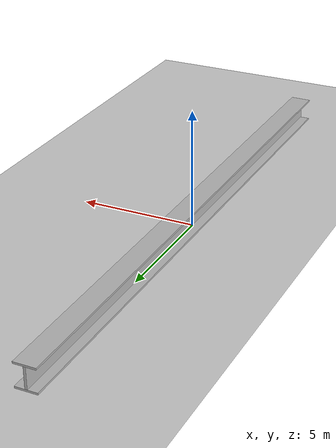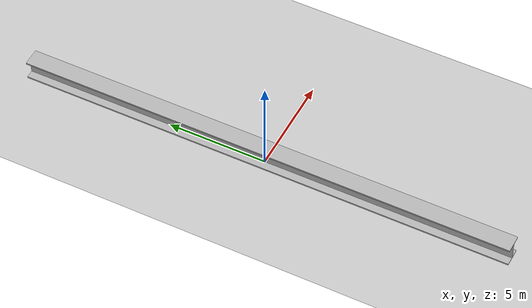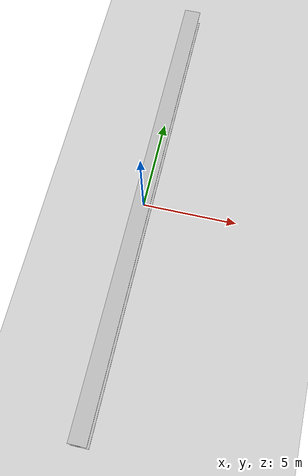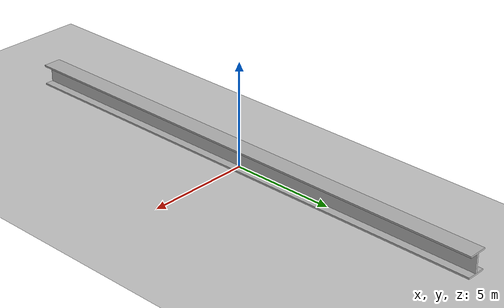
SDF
<?xml version="1.0" ?>
<sdf version="1.4">
  <world name="default">

    <!-- A global light source -->
    <include>
      <uri>model://sun</uri>
    </include>

    <!-- A ground plane -->
    <include>
      <uri>model://ground_plane</uri>
    </include>

    <!-- Enviroment config -->
    <gravity>0 0 -9.8</gravity>
    <magnetic_field>6e-06 2.3e-05 -4.2e-05</magnetic_field>
    <atmosphere type='adiabatic'/>
    <physics name='default_physics' default='0' type='ode'>
      <max_step_size>0.001</max_step_size>
      <real_time_factor>1</real_time_factor>
      <real_time_update_rate>1000</real_time_update_rate>
    </physics>
    <scene>
      <ambient>0.4 0.4 0.4 1</ambient>
      <background>0.7 0.7 0.7 1</background>
      <shadows>1</shadows>
    </scene>
    <spherical_coordinates>
      <surface_model>EARTH_WGS84</surface_model>
      <latitude_deg>0</latitude_deg>
      <longitude_deg>0</longitude_deg>
      <elevation>0</elevation>
      <heading_deg>0</heading_deg>
    </spherical_coordinates>

    <model name='bar_groud'>
      <static>true</static>
      <pose>0 0 0.04 0 0 0</pose>
      <link name='link'>
        <inertial>
          <mass>1</mass>
          <inertia>
            <ixx>1</ixx>
            <ixy>0</ixy>
            <ixz>0</ixz>
            <iyy>1</iyy>
            <iyz>0</iyz>
            <izz>1</izz>
          </inertia>
        </inertial>
        <collision name='collision'>
          <geometry>
            <box>
              <size>0.9 25 0.08</size>
            </box>
          </geometry>
          <max_contacts>10</max_contacts>
          <surface>
            <bounce/>
            <friction>
              <ode/>
            </friction>
            <contact>
              <ode/>
            </contact>
          </surface>
        </collision>
        <visual name='visual'>
          <geometry>
            <box>
              <size>0.9 25 0.08</size>
            </box>
          </geometry>
          <material>
            <script>
              <script>Gazebo/Grey</script>
            </script>
          </material>
        </visual>
        <velocity_decay>
          <linear>0</linear>
          <angular>0</angular>
        </velocity_decay>
        <self_collide>0</self_collide>
        <kinematic>0</kinematic>
        <gravity>1</gravity>
      </link>
      <static>0</static>
    </model>

    <model name='bar_upper'>
      <static>true</static>
      <pose>0 0 1 0 0 0</pose>
      <link name='link'>
        <inertial>
          <mass>1</mass>
          <inertia>
            <ixx>1</ixx>
            <ixy>0</ixy>
            <ixz>0</ixz>
            <iyy>1</iyy>
            <iyz>0</iyz>
            <izz>1</izz>
          </inertia>
        </inertial>
        <collision name='collision'>
          <geometry>
            <box>
              <size>0.9 25 0.08</size>
            </box>
          </geometry>
          <max_contacts>10</max_contacts>
          <surface>
            <bounce/>
            <friction>
              <ode/>
            </friction>
            <contact>
              <ode/>
            </contact>
          </surface>
        </collision>
        <visual name='visual'>
          <geometry>
            <box>
              <size>0.9 25 0.08</size>
            </box>
          </geometry>
          <material>
            <script>
              <script>Gazebo/Grey</script>
            </script>
          </material>
        </visual>
        <velocity_decay>
          <linear>0</linear>
          <angular>0</angular>
        </velocity_decay>
        <self_collide>0</self_collide>
        <kinematic>0</kinematic>
        <gravity>1</gravity>
      </link>
      <static>0</static>
    </model>

    <model name='cross_section'>
      <static>true</static>
      <pose>0 0 0.52 0 0 0</pose>
      <link name='link'>
        <inertial>
          <mass>1</mass>
          <inertia>
            <ixx>1</ixx>
            <ixy>0</ixy>
            <ixz>0</ixz>
            <iyy>1</iyy>
            <iyz>0</iyz>
            <izz>1</izz>
          </inertia>
        </inertial>
        <collision name='collision'>
          <geometry>
            <box>
              <size>0.1 25 0.88</size>
            </box>
          </geometry>
          <max_contacts>10</max_contacts>
          <surface>
            <bounce/>
            <friction>
              <ode/>
            </friction>
            <contact>
              <ode/>
            </contact>
          </surface>
        </collision>
        <visual name='visual'>
          <geometry>
            <box>
              <size>0.1 25 0.88</size>
            </box>
          </geometry>
          <material>
            <script>Gazebo/Grey</script>
          </material>
        </visual>
        <velocity_decay>
          <linear>0</linear>
          <angular>0</angular>
        </velocity_decay>
        <self_collide>0</self_collide>
        <kinematic>0</kinematic>
        <gravity>1</gravity>
      </link>
      <static>0</static>
    </model>

  </world>
</sdf>
